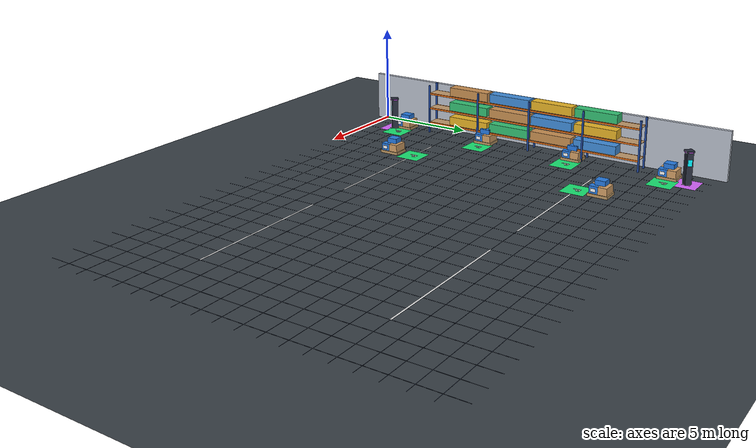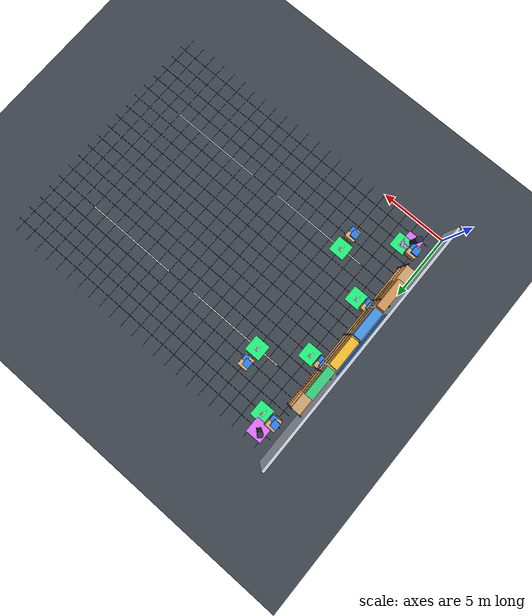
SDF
<sdf version="1.10">
 <world name="warehouse_s4">
  <model name="ground_plane">
   <static>true</static>
   <link name="link">
    <collision name="collision">
     <geometry><plane><normal>0 0 1</normal><size>25 20</size></plane></geometry>
    </collision>
    <visual name="visual">
     <geometry><plane><normal>0 0 1</normal><size>25 20</size></plane></geometry>
     <material>
      <ambient>0.22 0.25 0.28 1</ambient>
      <diffuse>0.22 0.25 0.28 1</diffuse>
      <specular>0.08 0.08 0.08 1</specular>
     </material>
    </visual>
    <pose>12.0 9.5 0 0 0 0</pose>
   </link>
  </model>
  <model name="wall_west">
   <static>true</static>
   <pose>0.1 9.5 1.25 0 0 0</pose>
   <link name="link">
    <collision name="c"><geometry><box><size>0.2 20.0 2.5</size></box></geometry></collision>
    <visual name="v">
     <geometry><box><size>0.2 20.0 2.5</size></box></geometry>
     <material>
      <ambient>0.65 0.68 0.72 1</ambient>
      <diffuse>0.72 0.75 0.80 1</diffuse>
      <specular>0.15 0.15 0.15 1</specular>
     </material>
    </visual>
   </link>
  </model>
  <model name="floor_grid_telemetry">
   <static>true</static>
   <link name="link">
    <visual name="grid_x_1">
     <pose>1.0 9.5 0.001 0 0 0</pose>
     <geometry><box><size>0.02 19.0 0.001</size></box></geometry>
     <material><ambient>0.14 0.18 0.24 1</ambient><diffuse>0.16 0.20 0.28 1</diffuse></material>
    </visual>
    <visual name="grid_x_2">
     <pose>2.0 9.5 0.001 0 0 0</pose>
     <geometry><box><size>0.02 19.0 0.001</size></box></geometry>
     <material><ambient>0.14 0.18 0.24 1</ambient><diffuse>0.16 0.20 0.28 1</diffuse></material>
    </visual>
    <visual name="grid_x_3">
     <pose>3.0 9.5 0.001 0 0 0</pose>
     <geometry><box><size>0.02 19.0 0.001</size></box></geometry>
     <material><ambient>0.14 0.18 0.24 1</ambient><diffuse>0.16 0.20 0.28 1</diffuse></material>
    </visual>
    <visual name="grid_x_4">
     <pose>4.0 9.5 0.001 0 0 0</pose>
     <geometry><box><size>0.02 19.0 0.001</size></box></geometry>
     <material><ambient>0.14 0.18 0.24 1</ambient><diffuse>0.16 0.20 0.28 1</diffuse></material>
    </visual>
    <visual name="grid_x_5">
     <pose>5.0 9.5 0.001 0 0 0</pose>
     <geometry><box><size>0.02 19.0 0.001</size></box></geometry>
     <material><ambient>0.14 0.18 0.24 1</ambient><diffuse>0.16 0.20 0.28 1</diffuse></material>
    </visual>
    <visual name="grid_x_6">
     <pose>6.0 9.5 0.001 0 0 0</pose>
     <geometry><box><size>0.02 19.0 0.001</size></box></geometry>
     <material><ambient>0.14 0.18 0.24 1</ambient><diffuse>0.16 0.20 0.28 1</diffuse></material>
    </visual>
    <visual name="grid_x_7">
     <pose>7.0 9.5 0.001 0 0 0</pose>
     <geometry><box><size>0.02 19.0 0.001</size></box></geometry>
     <material><ambient>0.14 0.18 0.24 1</ambient><diffuse>0.16 0.20 0.28 1</diffuse></material>
    </visual>
    <visual name="grid_x_8">
     <pose>8.0 9.5 0.001 0 0 0</pose>
     <geometry><box><size>0.02 19.0 0.001</size></box></geometry>
     <material><ambient>0.14 0.18 0.24 1</ambient><diffuse>0.16 0.20 0.28 1</diffuse></material>
    </visual>
    <visual name="grid_x_9">
     <pose>9.0 9.5 0.001 0 0 0</pose>
     <geometry><box><size>0.02 19.0 0.001</size></box></geometry>
     <material><ambient>0.14 0.18 0.24 1</ambient><diffuse>0.16 0.20 0.28 1</diffuse></material>
    </visual>
    <visual name="grid_x_10">
     <pose>10.0 9.5 0.001 0 0 0</pose>
     <geometry><box><size>0.02 19.0 0.001</size></box></geometry>
     <material><ambient>0.14 0.18 0.24 1</ambient><diffuse>0.16 0.20 0.28 1</diffuse></material>
    </visual>
    <visual name="grid_x_11">
     <pose>11.0 9.5 0.001 0 0 0</pose>
     <geometry><box><size>0.02 19.0 0.001</size></box></geometry>
     <material><ambient>0.14 0.18 0.24 1</ambient><diffuse>0.16 0.20 0.28 1</diffuse></material>
    </visual>
    <visual name="grid_x_12">
     <pose>12.0 9.5 0.001 0 0 0</pose>
     <geometry><box><size>0.02 19.0 0.001</size></box></geometry>
     <material><ambient>0.14 0.18 0.24 1</ambient><diffuse>0.16 0.20 0.28 1</diffuse></material>
    </visual>
    <visual name="grid_x_13">
     <pose>13.0 9.5 0.001 0 0 0</pose>
     <geometry><box><size>0.02 19.0 0.001</size></box></geometry>
     <material><ambient>0.14 0.18 0.24 1</ambient><diffuse>0.16 0.20 0.28 1</diffuse></material>
    </visual>
    <visual name="grid_x_14">
     <pose>14.0 9.5 0.001 0 0 0</pose>
     <geometry><box><size>0.02 19.0 0.001</size></box></geometry>
     <material><ambient>0.14 0.18 0.24 1</ambient><diffuse>0.16 0.20 0.28 1</diffuse></material>
    </visual>
    <visual name="grid_x_15">
     <pose>15.0 9.5 0.001 0 0 0</pose>
     <geometry><box><size>0.02 19.0 0.001</size></box></geometry>
     <material><ambient>0.14 0.18 0.24 1</ambient><diffuse>0.16 0.20 0.28 1</diffuse></material>
    </visual>
    <visual name="grid_x_16">
     <pose>16.0 9.5 0.001 0 0 0</pose>
     <geometry><box><size>0.02 19.0 0.001</size></box></geometry>
     <material><ambient>0.14 0.18 0.24 1</ambient><diffuse>0.16 0.20 0.28 1</diffuse></material>
    </visual>
    <visual name="grid_x_17">
     <pose>17.0 9.5 0.001 0 0 0</pose>
     <geometry><box><size>0.02 19.0 0.001</size></box></geometry>
     <material><ambient>0.14 0.18 0.24 1</ambient><diffuse>0.16 0.20 0.28 1</diffuse></material>
    </visual>
    <visual name="grid_x_18">
     <pose>18.0 9.5 0.001 0 0 0</pose>
     <geometry><box><size>0.02 19.0 0.001</size></box></geometry>
     <material><ambient>0.14 0.18 0.24 1</ambient><diffuse>0.16 0.20 0.28 1</diffuse></material>
    </visual>
    <visual name="grid_x_19">
     <pose>19.0 9.5 0.001 0 0 0</pose>
     <geometry><box><size>0.02 19.0 0.001</size></box></geometry>
     <material><ambient>0.14 0.18 0.24 1</ambient><diffuse>0.16 0.20 0.28 1</diffuse></material>
    </visual>
    <visual name="grid_x_20">
     <pose>20.0 9.5 0.001 0 0 0</pose>
     <geometry><box><size>0.02 19.0 0.001</size></box></geometry>
     <material><ambient>0.14 0.18 0.24 1</ambient><diffuse>0.16 0.20 0.28 1</diffuse></material>
    </visual>
    <visual name="grid_x_21">
     <pose>21.0 9.5 0.001 0 0 0</pose>
     <geometry><box><size>0.02 19.0 0.001</size></box></geometry>
     <material><ambient>0.14 0.18 0.24 1</ambient><diffuse>0.16 0.20 0.28 1</diffuse></material>
    </visual>
    <visual name="grid_x_22">
     <pose>22.0 9.5 0.001 0 0 0</pose>
     <geometry><box><size>0.02 19.0 0.001</size></box></geometry>
     <material><ambient>0.14 0.18 0.24 1</ambient><diffuse>0.16 0.20 0.28 1</diffuse></material>
    </visual>
    <visual name="grid_x_23">
     <pose>23.0 9.5 0.001 0 0 0</pose>
     <geometry><box><size>0.02 19.0 0.001</size></box></geometry>
     <material><ambient>0.14 0.18 0.24 1</ambient><diffuse>0.16 0.20 0.28 1</diffuse></material>
    </visual>
    <visual name="grid_y_1">
     <pose>12.0 1.0 0.001 0 0 0</pose>
     <geometry><box><size>23.0 0.02 0.001</size></box></geometry>
     <material><ambient>0.14 0.18 0.24 1</ambient><diffuse>0.16 0.20 0.28 1</diffuse></material>
    </visual>
    <visual name="grid_y_2">
     <pose>12.0 2.0 0.001 0 0 0</pose>
     <geometry><box><size>23.0 0.02 0.001</size></box></geometry>
     <material><ambient>0.14 0.18 0.24 1</ambient><diffuse>0.16 0.20 0.28 1</diffuse></material>
    </visual>
    <visual name="grid_y_3">
     <pose>12.0 3.0 0.001 0 0 0</pose>
     <geometry><box><size>23.0 0.02 0.001</size></box></geometry>
     <material><ambient>0.14 0.18 0.24 1</ambient><diffuse>0.16 0.20 0.28 1</diffuse></material>
    </visual>
    <visual name="grid_y_4">
     <pose>12.0 4.0 0.001 0 0 0</pose>
     <geometry><box><size>23.0 0.02 0.001</size></box></geometry>
     <material><ambient>0.14 0.18 0.24 1</ambient><diffuse>0.16 0.20 0.28 1</diffuse></material>
    </visual>
    <visual name="grid_y_5">
     <pose>12.0 5.0 0.001 0 0 0</pose>
     <geometry><box><size>23.0 0.02 0.001</size></box></geometry>
     <material><ambient>0.14 0.18 0.24 1</ambient><diffuse>0.16 0.20 0.28 1</diffuse></material>
    </visual>
    <visual name="grid_y_6">
     <pose>12.0 6.0 0.001 0 0 0</pose>
     <geometry><box><size>23.0 0.02 0.001</size></box></geometry>
     <material><ambient>0.14 0.18 0.24 1</ambient><diffuse>0.16 0.20 0.28 1</diffuse></material>
    </visual>
    <visual name="grid_y_7">
     <pose>12.0 7.0 0.001 0 0 0</pose>
     <geometry><box><size>23.0 0.02 0.001</size></box></geometry>
     <material><ambient>0.14 0.18 0.24 1</ambient><diffuse>0.16 0.20 0.28 1</diffuse></material>
    </visual>
    <visual name="grid_y_8">
     <pose>12.0 8.0 0.001 0 0 0</pose>
     <geometry><box><size>23.0 0.02 0.001</size></box></geometry>
     <material><ambient>0.14 0.18 0.24 1</ambient><diffuse>0.16 0.20 0.28 1</diffuse></material>
    </visual>
    <visual name="grid_y_9">
     <pose>12.0 9.0 0.001 0 0 0</pose>
     <geometry><box><size>23.0 0.02 0.001</size></box></geometry>
     <material><ambient>0.14 0.18 0.24 1</ambient><diffuse>0.16 0.20 0.28 1</diffuse></material>
    </visual>
    <visual name="grid_y_10">
     <pose>12.0 10.0 0.001 0 0 0</pose>
     <geometry><box><size>23.0 0.02 0.001</size></box></geometry>
     <material><ambient>0.14 0.18 0.24 1</ambient><diffuse>0.16 0.20 0.28 1</diffuse></material>
    </visual>
    <visual name="grid_y_11">
     <pose>12.0 11.0 0.001 0 0 0</pose>
     <geometry><box><size>23.0 0.02 0.001</size></box></geometry>
     <material><ambient>0.14 0.18 0.24 1</ambient><diffuse>0.16 0.20 0.28 1</diffuse></material>
    </visual>
    <visual name="grid_y_12">
     <pose>12.0 12.0 0.001 0 0 0</pose>
     <geometry><box><size>23.0 0.02 0.001</size></box></geometry>
     <material><ambient>0.14 0.18 0.24 1</ambient><diffuse>0.16 0.20 0.28 1</diffuse></material>
    </visual>
    <visual name="grid_y_13">
     <pose>12.0 13.0 0.001 0 0 0</pose>
     <geometry><box><size>23.0 0.02 0.001</size></box></geometry>
     <material><ambient>0.14 0.18 0.24 1</ambient><diffuse>0.16 0.20 0.28 1</diffuse></material>
    </visual>
    <visual name="grid_y_14">
     <pose>12.0 14.0 0.001 0 0 0</pose>
     <geometry><box><size>23.0 0.02 0.001</size></box></geometry>
     <material><ambient>0.14 0.18 0.24 1</ambient><diffuse>0.16 0.20 0.28 1</diffuse></material>
    </visual>
    <visual name="grid_y_15">
     <pose>12.0 15.0 0.001 0 0 0</pose>
     <geometry><box><size>23.0 0.02 0.001</size></box></geometry>
     <material><ambient>0.14 0.18 0.24 1</ambient><diffuse>0.16 0.20 0.28 1</diffuse></material>
    </visual>
    <visual name="grid_y_16">
     <pose>12.0 16.0 0.001 0 0 0</pose>
     <geometry><box><size>23.0 0.02 0.001</size></box></geometry>
     <material><ambient>0.14 0.18 0.24 1</ambient><diffuse>0.16 0.20 0.28 1</diffuse></material>
    </visual>
    <visual name="grid_y_17">
     <pose>12.0 17.0 0.001 0 0 0</pose>
     <geometry><box><size>23.0 0.02 0.001</size></box></geometry>
     <material><ambient>0.14 0.18 0.24 1</ambient><diffuse>0.16 0.20 0.28 1</diffuse></material>
    </visual>
    <visual name="grid_y_18">
     <pose>12.0 18.0 0.001 0 0 0</pose>
     <geometry><box><size>23.0 0.02 0.001</size></box></geometry>
     <material><ambient>0.14 0.18 0.24 1</ambient><diffuse>0.16 0.20 0.28 1</diffuse></material>
    </visual>
   </link>
  </model>
  <model name="transit_lanes">
   <static>true</static>
   <link name="link">
    <visual name="lane_north_west">
     <pose>7.0 14.0 0.002 0 0 0</pose>
     <geometry><box><size>7.5 0.08 0.002</size></box></geometry>
     <material><ambient>0.8 0.8 0.8 1</ambient><diffuse>0.9 0.9 0.9 1</diffuse></material>
    </visual>
    <visual name="lane_north_east">
     <pose>16.5 14.0 0.002 0 0 0</pose>
     <geometry><box><size>7.0 0.08 0.002</size></box></geometry>
     <material><ambient>0.8 0.8 0.8 1</ambient><diffuse>0.9 0.9 0.9 1</diffuse></material>
    </visual>
    <visual name="lane_south_west">
     <pose>7.0 5.0 0.002 0 0 0</pose>
     <geometry><box><size>7.5 0.08 0.002</size></box></geometry>
     <material><ambient>0.8 0.8 0.8 1</ambient><diffuse>0.9 0.9 0.9 1</diffuse></material>
    </visual>
    <visual name="lane_south_east">
     <pose>16.5 5.0 0.002 0 0 0</pose>
     <geometry><box><size>7.0 0.08 0.002</size></box></geometry>
     <material><ambient>0.8 0.8 0.8 1</ambient><diffuse>0.9 0.9 0.9 1</diffuse></material>
    </visual>
   </link>
  </model>
  <model name="pad_pickup_1">
   <static>true</static>
   <pose>2.000 17.000 0.003 0 0 0</pose>
   <link name="link">
    <visual name="pad_surface">
     <geometry><box><size>1.10 1.10 0.004</size></box></geometry>
     <material>
      <ambient>0.05 0.50 0.28 1</ambient>
      <diffuse>0.08 0.72 0.35 1</diffuse>
      <specular>0.4 0.4 0.4 1</specular>
     </material>
    </visual>
    <visual name="pad_border">
     <pose>0 0 0.002 0 0 0</pose>
     <geometry><box><size>1.20 1.20 0.002</size></box></geometry>
     <material><ambient>0.10 0.85 0.40 1</ambient><diffuse>0.10 0.90 0.45 1</diffuse></material>
    </visual>
    <visual name="stencil_p_vert">
     <pose>-0.10 0 0.005 0 0 0</pose>
     <geometry><box><size>0.07 0.42 0.003</size></box></geometry>
     <material><ambient>1 1 1 1</ambient><diffuse>1 1 1 1</diffuse><specular>0.5 0.5 0.5 1</specular></material>
    </visual>
    <visual name="stencil_p_top">
     <pose>0.01 0.16 0.005 0 0 0</pose>
     <geometry><box><size>0.16 0.07 0.003</size></box></geometry>
     <material><ambient>1 1 1 1</ambient><diffuse>1 1 1 1</diffuse><specular>0.5 0.5 0.5 1</specular></material>
    </visual>
    <visual name="stencil_p_mid">
     <pose>0.01 0.02 0.005 0 0 0</pose>
     <geometry><box><size>0.16 0.07 0.003</size></box></geometry>
     <material><ambient>1 1 1 1</ambient><diffuse>1 1 1 1</diffuse><specular>0.5 0.5 0.5 1</specular></material>
    </visual>
    <visual name="stencil_p_right">
     <pose>0.09 0.09 0.005 0 0 0</pose>
     <geometry><box><size>0.07 0.18 0.003</size></box></geometry>
     <material><ambient>1 1 1 1</ambient><diffuse>1 1 1 1</diffuse><specular>0.5 0.5 0.5 1</specular></material>
    </visual>
   </link>
  </model>
  <model name="cargo_pickup_1">
   <static>true</static>
   <pose>1.100 17.000 0.0 0 0 0.0000</pose>
   <link name="link">
    <visual name="pallet_base">
     <pose>0 0 0.07 0 0 0</pose>
     <geometry><box><size>0.80 1.00 0.14</size></box></geometry>
     <material><ambient>0.58 0.46 0.30 1</ambient><diffuse>0.72 0.58 0.38 1</diffuse></material>
    </visual>
    <visual name="box_ll">
     <pose>-0.18 -0.22 0.32 0 0 0</pose>
     <geometry><box><size>0.36 0.44 0.36</size></box></geometry>
     <material><ambient>0.72 0.52 0.32 1</ambient><diffuse>0.82 0.62 0.40 1</diffuse></material>
    </visual>
    <visual name="box_lr">
     <pose>0.18 -0.22 0.32 0 0 0</pose>
     <geometry><box><size>0.36 0.44 0.36</size></box></geometry>
     <material>
      <ambient>0.12 0.38 0.72 1</ambient>
      <diffuse>0.15 0.48 0.88 1</diffuse>
      <specular>0.3 0.3 0.3 1</specular>
     </material>
    </visual>
    <visual name="box_top">
     <pose>0 0.22 0.32 0 0 0</pose>
     <geometry><box><size>0.74 0.44 0.36</size></box></geometry>
     <material><ambient>0.72 0.52 0.32 1</ambient><diffuse>0.82 0.62 0.40 1</diffuse></material>
    </visual>
    <visual name="box_upper">
     <pose>-0.10 0.0 0.62 0 0 0</pose>
     <geometry><box><size>0.48 0.52 0.24</size></box></geometry>
     <material>
      <ambient>0.12 0.38 0.72 1</ambient>
      <diffuse>0.15 0.48 0.88 1</diffuse>
      <specular>0.3 0.3 0.3 1</specular>
     </material>
    </visual>
    <visual name="placard">
     <pose>0.402 -0.22 0.32 0 0 0</pose>
     <geometry><box><size>0.005 0.24 0.16</size></box></geometry>
     <material><ambient>0.95 0.95 0.95 1</ambient><diffuse>0.98 0.98 0.98 1</diffuse></material>
    </visual>
   </link>
  </model>
  <model name="pad_pickup_2">
   <static>true</static>
   <pose>2.000 12.000 0.003 0 0 0</pose>
   <link name="link">
    <visual name="pad_surface">
     <geometry><box><size>1.10 1.10 0.004</size></box></geometry>
     <material>
      <ambient>0.05 0.50 0.28 1</ambient>
      <diffuse>0.08 0.72 0.35 1</diffuse>
      <specular>0.4 0.4 0.4 1</specular>
     </material>
    </visual>
    <visual name="pad_border">
     <pose>0 0 0.002 0 0 0</pose>
     <geometry><box><size>1.20 1.20 0.002</size></box></geometry>
     <material><ambient>0.10 0.85 0.40 1</ambient><diffuse>0.10 0.90 0.45 1</diffuse></material>
    </visual>
    <visual name="stencil_p_vert">
     <pose>-0.10 0 0.005 0 0 0</pose>
     <geometry><box><size>0.07 0.42 0.003</size></box></geometry>
     <material><ambient>1 1 1 1</ambient><diffuse>1 1 1 1</diffuse><specular>0.5 0.5 0.5 1</specular></material>
    </visual>
    <visual name="stencil_p_top">
     <pose>0.01 0.16 0.005 0 0 0</pose>
     <geometry><box><size>0.16 0.07 0.003</size></box></geometry>
     <material><ambient>1 1 1 1</ambient><diffuse>1 1 1 1</diffuse><specular>0.5 0.5 0.5 1</specular></material>
    </visual>
    <visual name="stencil_p_mid">
     <pose>0.01 0.02 0.005 0 0 0</pose>
     <geometry><box><size>0.16 0.07 0.003</size></box></geometry>
     <material><ambient>1 1 1 1</ambient><diffuse>1 1 1 1</diffuse><specular>0.5 0.5 0.5 1</specular></material>
    </visual>
    <visual name="stencil_p_right">
     <pose>0.09 0.09 0.005 0 0 0</pose>
     <geometry><box><size>0.07 0.18 0.003</size></box></geometry>
     <material><ambient>1 1 1 1</ambient><diffuse>1 1 1 1</diffuse><specular>0.5 0.5 0.5 1</specular></material>
    </visual>
   </link>
  </model>
  <model name="cargo_pickup_2">
   <static>true</static>
   <pose>1.100 12.000 0.0 0 0 0.0000</pose>
   <link name="link">
    <visual name="pallet_base">
     <pose>0 0 0.07 0 0 0</pose>
     <geometry><box><size>0.80 1.00 0.14</size></box></geometry>
     <material><ambient>0.58 0.46 0.30 1</ambient><diffuse>0.72 0.58 0.38 1</diffuse></material>
    </visual>
    <visual name="box_ll">
     <pose>-0.18 -0.22 0.32 0 0 0</pose>
     <geometry><box><size>0.36 0.44 0.36</size></box></geometry>
     <material><ambient>0.72 0.52 0.32 1</ambient><diffuse>0.82 0.62 0.40 1</diffuse></material>
    </visual>
    <visual name="box_lr">
     <pose>0.18 -0.22 0.32 0 0 0</pose>
     <geometry><box><size>0.36 0.44 0.36</size></box></geometry>
     <material>
      <ambient>0.12 0.38 0.72 1</ambient>
      <diffuse>0.15 0.48 0.88 1</diffuse>
      <specular>0.3 0.3 0.3 1</specular>
     </material>
    </visual>
    <visual name="box_top">
     <pose>0 0.22 0.32 0 0 0</pose>
     <geometry><box><size>0.74 0.44 0.36</size></box></geometry>
     <material><ambient>0.72 0.52 0.32 1</ambient><diffuse>0.82 0.62 0.40 1</diffuse></material>
    </visual>
    <visual name="box_upper">
     <pose>-0.10 0.0 0.62 0 0 0</pose>
     <geometry><box><size>0.48 0.52 0.24</size></box></geometry>
     <material>
      <ambient>0.12 0.38 0.72 1</ambient>
      <diffuse>0.15 0.48 0.88 1</diffuse>
      <specular>0.3 0.3 0.3 1</specular>
     </material>
    </visual>
    <visual name="placard">
     <pose>0.402 -0.22 0.32 0 0 0</pose>
     <geometry><box><size>0.005 0.24 0.16</size></box></geometry>
     <material><ambient>0.95 0.95 0.95 1</ambient><diffuse>0.98 0.98 0.98 1</diffuse></material>
    </visual>
   </link>
  </model>
  <model name="pad_pickup_3">
   <static>true</static>
   <pose>2.000 7.000 0.003 0 0 0</pose>
   <link name="link">
    <visual name="pad_surface">
     <geometry><box><size>1.10 1.10 0.004</size></box></geometry>
     <material>
      <ambient>0.05 0.50 0.28 1</ambient>
      <diffuse>0.08 0.72 0.35 1</diffuse>
      <specular>0.4 0.4 0.4 1</specular>
     </material>
    </visual>
    <visual name="pad_border">
     <pose>0 0 0.002 0 0 0</pose>
     <geometry><box><size>1.20 1.20 0.002</size></box></geometry>
     <material><ambient>0.10 0.85 0.40 1</ambient><diffuse>0.10 0.90 0.45 1</diffuse></material>
    </visual>
    <visual name="stencil_p_vert">
     <pose>-0.10 0 0.005 0 0 0</pose>
     <geometry><box><size>0.07 0.42 0.003</size></box></geometry>
     <material><ambient>1 1 1 1</ambient><diffuse>1 1 1 1</diffuse><specular>0.5 0.5 0.5 1</specular></material>
    </visual>
    <visual name="stencil_p_top">
     <pose>0.01 0.16 0.005 0 0 0</pose>
     <geometry><box><size>0.16 0.07 0.003</size></box></geometry>
     <material><ambient>1 1 1 1</ambient><diffuse>1 1 1 1</diffuse><specular>0.5 0.5 0.5 1</specular></material>
    </visual>
    <visual name="stencil_p_mid">
     <pose>0.01 0.02 0.005 0 0 0</pose>
     <geometry><box><size>0.16 0.07 0.003</size></box></geometry>
     <material><ambient>1 1 1 1</ambient><diffuse>1 1 1 1</diffuse><specular>0.5 0.5 0.5 1</specular></material>
    </visual>
    <visual name="stencil_p_right">
     <pose>0.09 0.09 0.005 0 0 0</pose>
     <geometry><box><size>0.07 0.18 0.003</size></box></geometry>
     <material><ambient>1 1 1 1</ambient><diffuse>1 1 1 1</diffuse><specular>0.5 0.5 0.5 1</specular></material>
    </visual>
   </link>
  </model>
  <model name="cargo_pickup_3">
   <static>true</static>
   <pose>1.100 7.000 0.0 0 0 0.0000</pose>
   <link name="link">
    <visual name="pallet_base">
     <pose>0 0 0.07 0 0 0</pose>
     <geometry><box><size>0.80 1.00 0.14</size></box></geometry>
     <material><ambient>0.58 0.46 0.30 1</ambient><diffuse>0.72 0.58 0.38 1</diffuse></material>
    </visual>
    <visual name="box_ll">
     <pose>-0.18 -0.22 0.32 0 0 0</pose>
     <geometry><box><size>0.36 0.44 0.36</size></box></geometry>
     <material><ambient>0.72 0.52 0.32 1</ambient><diffuse>0.82 0.62 0.40 1</diffuse></material>
    </visual>
    <visual name="box_lr">
     <pose>0.18 -0.22 0.32 0 0 0</pose>
     <geometry><box><size>0.36 0.44 0.36</size></box></geometry>
     <material>
      <ambient>0.12 0.38 0.72 1</ambient>
      <diffuse>0.15 0.48 0.88 1</diffuse>
      <specular>0.3 0.3 0.3 1</specular>
     </material>
    </visual>
    <visual name="box_top">
     <pose>0 0.22 0.32 0 0 0</pose>
     <geometry><box><size>0.74 0.44 0.36</size></box></geometry>
     <material><ambient>0.72 0.52 0.32 1</ambient><diffuse>0.82 0.62 0.40 1</diffuse></material>
    </visual>
    <visual name="box_upper">
     <pose>-0.10 0.0 0.62 0 0 0</pose>
     <geometry><box><size>0.48 0.52 0.24</size></box></geometry>
     <material>
      <ambient>0.12 0.38 0.72 1</ambient>
      <diffuse>0.15 0.48 0.88 1</diffuse>
      <specular>0.3 0.3 0.3 1</specular>
     </material>
    </visual>
    <visual name="placard">
     <pose>0.402 -0.22 0.32 0 0 0</pose>
     <geometry><box><size>0.005 0.24 0.16</size></box></geometry>
     <material><ambient>0.95 0.95 0.95 1</ambient><diffuse>0.98 0.98 0.98 1</diffuse></material>
    </visual>
   </link>
  </model>
  <model name="pad_pickup_4">
   <static>true</static>
   <pose>2.000 2.000 0.003 0 0 0</pose>
   <link name="link">
    <visual name="pad_surface">
     <geometry><box><size>1.10 1.10 0.004</size></box></geometry>
     <material>
      <ambient>0.05 0.50 0.28 1</ambient>
      <diffuse>0.08 0.72 0.35 1</diffuse>
      <specular>0.4 0.4 0.4 1</specular>
     </material>
    </visual>
    <visual name="pad_border">
     <pose>0 0 0.002 0 0 0</pose>
     <geometry><box><size>1.20 1.20 0.002</size></box></geometry>
     <material><ambient>0.10 0.85 0.40 1</ambient><diffuse>0.10 0.90 0.45 1</diffuse></material>
    </visual>
    <visual name="stencil_p_vert">
     <pose>-0.10 0 0.005 0 0 0</pose>
     <geometry><box><size>0.07 0.42 0.003</size></box></geometry>
     <material><ambient>1 1 1 1</ambient><diffuse>1 1 1 1</diffuse><specular>0.5 0.5 0.5 1</specular></material>
    </visual>
    <visual name="stencil_p_top">
     <pose>0.01 0.16 0.005 0 0 0</pose>
     <geometry><box><size>0.16 0.07 0.003</size></box></geometry>
     <material><ambient>1 1 1 1</ambient><diffuse>1 1 1 1</diffuse><specular>0.5 0.5 0.5 1</specular></material>
    </visual>
    <visual name="stencil_p_mid">
     <pose>0.01 0.02 0.005 0 0 0</pose>
     <geometry><box><size>0.16 0.07 0.003</size></box></geometry>
     <material><ambient>1 1 1 1</ambient><diffuse>1 1 1 1</diffuse><specular>0.5 0.5 0.5 1</specular></material>
    </visual>
    <visual name="stencil_p_right">
     <pose>0.09 0.09 0.005 0 0 0</pose>
     <geometry><box><size>0.07 0.18 0.003</size></box></geometry>
     <material><ambient>1 1 1 1</ambient><diffuse>1 1 1 1</diffuse><specular>0.5 0.5 0.5 1</specular></material>
    </visual>
   </link>
  </model>
  <model name="cargo_pickup_4">
   <static>true</static>
   <pose>1.100 2.000 0.0 0 0 0.0000</pose>
   <link name="link">
    <visual name="pallet_base">
     <pose>0 0 0.07 0 0 0</pose>
     <geometry><box><size>0.80 1.00 0.14</size></box></geometry>
     <material><ambient>0.58 0.46 0.30 1</ambient><diffuse>0.72 0.58 0.38 1</diffuse></material>
    </visual>
    <visual name="box_ll">
     <pose>-0.18 -0.22 0.32 0 0 0</pose>
     <geometry><box><size>0.36 0.44 0.36</size></box></geometry>
     <material><ambient>0.72 0.52 0.32 1</ambient><diffuse>0.82 0.62 0.40 1</diffuse></material>
    </visual>
    <visual name="box_lr">
     <pose>0.18 -0.22 0.32 0 0 0</pose>
     <geometry><box><size>0.36 0.44 0.36</size></box></geometry>
     <material>
      <ambient>0.12 0.38 0.72 1</ambient>
      <diffuse>0.15 0.48 0.88 1</diffuse>
      <specular>0.3 0.3 0.3 1</specular>
     </material>
    </visual>
    <visual name="box_top">
     <pose>0 0.22 0.32 0 0 0</pose>
     <geometry><box><size>0.74 0.44 0.36</size></box></geometry>
     <material><ambient>0.72 0.52 0.32 1</ambient><diffuse>0.82 0.62 0.40 1</diffuse></material>
    </visual>
    <visual name="box_upper">
     <pose>-0.10 0.0 0.62 0 0 0</pose>
     <geometry><box><size>0.48 0.52 0.24</size></box></geometry>
     <material>
      <ambient>0.12 0.38 0.72 1</ambient>
      <diffuse>0.15 0.48 0.88 1</diffuse>
      <specular>0.3 0.3 0.3 1</specular>
     </material>
    </visual>
    <visual name="placard">
     <pose>0.402 -0.22 0.32 0 0 0</pose>
     <geometry><box><size>0.005 0.24 0.16</size></box></geometry>
     <material><ambient>0.95 0.95 0.95 1</ambient><diffuse>0.98 0.98 0.98 1</diffuse></material>
    </visual>
   </link>
  </model>
  <model name="pad_staging_n">
   <static>true</static>
   <pose>5.000 14.000 0.003 0 0 0</pose>
   <link name="link">
    <visual name="pad_surface">
     <geometry><box><size>1.10 1.10 0.004</size></box></geometry>
     <material>
      <ambient>0.05 0.50 0.28 1</ambient>
      <diffuse>0.08 0.72 0.35 1</diffuse>
      <specular>0.4 0.4 0.4 1</specular>
     </material>
    </visual>
    <visual name="pad_border">
     <pose>0 0 0.002 0 0 0</pose>
     <geometry><box><size>1.20 1.20 0.002</size></box></geometry>
     <material><ambient>0.10 0.85 0.40 1</ambient><diffuse>0.10 0.90 0.45 1</diffuse></material>
    </visual>
    <visual name="stencil_p_vert">
     <pose>-0.10 0 0.005 0 0 0</pose>
     <geometry><box><size>0.07 0.42 0.003</size></box></geometry>
     <material><ambient>1 1 1 1</ambient><diffuse>1 1 1 1</diffuse><specular>0.5 0.5 0.5 1</specular></material>
    </visual>
    <visual name="stencil_p_top">
     <pose>0.01 0.16 0.005 0 0 0</pose>
     <geometry><box><size>0.16 0.07 0.003</size></box></geometry>
     <material><ambient>1 1 1 1</ambient><diffuse>1 1 1 1</diffuse><specular>0.5 0.5 0.5 1</specular></material>
    </visual>
    <visual name="stencil_p_mid">
     <pose>0.01 0.02 0.005 0 0 0</pose>
     <geometry><box><size>0.16 0.07 0.003</size></box></geometry>
     <material><ambient>1 1 1 1</ambient><diffuse>1 1 1 1</diffuse><specular>0.5 0.5 0.5 1</specular></material>
    </visual>
    <visual name="stencil_p_right">
     <pose>0.09 0.09 0.005 0 0 0</pose>
     <geometry><box><size>0.07 0.18 0.003</size></box></geometry>
     <material><ambient>1 1 1 1</ambient><diffuse>1 1 1 1</diffuse><specular>0.5 0.5 0.5 1</specular></material>
    </visual>
   </link>
  </model>
  <model name="cargo_staging_n">
   <static>true</static>
   <pose>5.000 15.200 0.0 0 0 0.0000</pose>
   <link name="link">
    <visual name="pallet_base">
     <pose>0 0 0.07 0 0 0</pose>
     <geometry><box><size>0.80 1.00 0.14</size></box></geometry>
     <material><ambient>0.58 0.46 0.30 1</ambient><diffuse>0.72 0.58 0.38 1</diffuse></material>
    </visual>
    <visual name="box_ll">
     <pose>-0.18 -0.22 0.32 0 0 0</pose>
     <geometry><box><size>0.36 0.44 0.36</size></box></geometry>
     <material><ambient>0.72 0.52 0.32 1</ambient><diffuse>0.82 0.62 0.40 1</diffuse></material>
    </visual>
    <visual name="box_lr">
     <pose>0.18 -0.22 0.32 0 0 0</pose>
     <geometry><box><size>0.36 0.44 0.36</size></box></geometry>
     <material>
      <ambient>0.12 0.38 0.72 1</ambient>
      <diffuse>0.15 0.48 0.88 1</diffuse>
      <specular>0.3 0.3 0.3 1</specular>
     </material>
    </visual>
    <visual name="box_top">
     <pose>0 0.22 0.32 0 0 0</pose>
     <geometry><box><size>0.74 0.44 0.36</size></box></geometry>
     <material><ambient>0.72 0.52 0.32 1</ambient><diffuse>0.82 0.62 0.40 1</diffuse></material>
    </visual>
    <visual name="box_upper">
     <pose>-0.10 0.0 0.62 0 0 0</pose>
     <geometry><box><size>0.48 0.52 0.24</size></box></geometry>
     <material>
      <ambient>0.12 0.38 0.72 1</ambient>
      <diffuse>0.15 0.48 0.88 1</diffuse>
      <specular>0.3 0.3 0.3 1</specular>
     </material>
    </visual>
    <visual name="placard">
     <pose>0.402 -0.22 0.32 0 0 0</pose>
     <geometry><box><size>0.005 0.24 0.16</size></box></geometry>
     <material><ambient>0.95 0.95 0.95 1</ambient><diffuse>0.98 0.98 0.98 1</diffuse></material>
    </visual>
   </link>
  </model>
  <model name="pad_staging_s">
   <static>true</static>
   <pose>5.000 5.000 0.003 0 0 0</pose>
   <link name="link">
    <visual name="pad_surface">
     <geometry><box><size>1.10 1.10 0.004</size></box></geometry>
     <material>
      <ambient>0.05 0.50 0.28 1</ambient>
      <diffuse>0.08 0.72 0.35 1</diffuse>
      <specular>0.4 0.4 0.4 1</specular>
     </material>
    </visual>
    <visual name="pad_border">
     <pose>0 0 0.002 0 0 0</pose>
     <geometry><box><size>1.20 1.20 0.002</size></box></geometry>
     <material><ambient>0.10 0.85 0.40 1</ambient><diffuse>0.10 0.90 0.45 1</diffuse></material>
    </visual>
    <visual name="stencil_p_vert">
     <pose>-0.10 0 0.005 0 0 0</pose>
     <geometry><box><size>0.07 0.42 0.003</size></box></geometry>
     <material><ambient>1 1 1 1</ambient><diffuse>1 1 1 1</diffuse><specular>0.5 0.5 0.5 1</specular></material>
    </visual>
    <visual name="stencil_p_top">
     <pose>0.01 0.16 0.005 0 0 0</pose>
     <geometry><box><size>0.16 0.07 0.003</size></box></geometry>
     <material><ambient>1 1 1 1</ambient><diffuse>1 1 1 1</diffuse><specular>0.5 0.5 0.5 1</specular></material>
    </visual>
    <visual name="stencil_p_mid">
     <pose>0.01 0.02 0.005 0 0 0</pose>
     <geometry><box><size>0.16 0.07 0.003</size></box></geometry>
     <material><ambient>1 1 1 1</ambient><diffuse>1 1 1 1</diffuse><specular>0.5 0.5 0.5 1</specular></material>
    </visual>
    <visual name="stencil_p_right">
     <pose>0.09 0.09 0.005 0 0 0</pose>
     <geometry><box><size>0.07 0.18 0.003</size></box></geometry>
     <material><ambient>1 1 1 1</ambient><diffuse>1 1 1 1</diffuse><specular>0.5 0.5 0.5 1</specular></material>
    </visual>
   </link>
  </model>
  <model name="cargo_staging_s">
   <static>true</static>
   <pose>5.000 3.800 0.0 0 0 0.0000</pose>
   <link name="link">
    <visual name="pallet_base">
     <pose>0 0 0.07 0 0 0</pose>
     <geometry><box><size>0.80 1.00 0.14</size></box></geometry>
     <material><ambient>0.58 0.46 0.30 1</ambient><diffuse>0.72 0.58 0.38 1</diffuse></material>
    </visual>
    <visual name="box_ll">
     <pose>-0.18 -0.22 0.32 0 0 0</pose>
     <geometry><box><size>0.36 0.44 0.36</size></box></geometry>
     <material><ambient>0.72 0.52 0.32 1</ambient><diffuse>0.82 0.62 0.40 1</diffuse></material>
    </visual>
    <visual name="box_lr">
     <pose>0.18 -0.22 0.32 0 0 0</pose>
     <geometry><box><size>0.36 0.44 0.36</size></box></geometry>
     <material>
      <ambient>0.12 0.38 0.72 1</ambient>
      <diffuse>0.15 0.48 0.88 1</diffuse>
      <specular>0.3 0.3 0.3 1</specular>
     </material>
    </visual>
    <visual name="box_top">
     <pose>0 0.22 0.32 0 0 0</pose>
     <geometry><box><size>0.74 0.44 0.36</size></box></geometry>
     <material><ambient>0.72 0.52 0.32 1</ambient><diffuse>0.82 0.62 0.40 1</diffuse></material>
    </visual>
    <visual name="box_upper">
     <pose>-0.10 0.0 0.62 0 0 0</pose>
     <geometry><box><size>0.48 0.52 0.24</size></box></geometry>
     <material>
      <ambient>0.12 0.38 0.72 1</ambient>
      <diffuse>0.15 0.48 0.88 1</diffuse>
      <specular>0.3 0.3 0.3 1</specular>
     </material>
    </visual>
    <visual name="placard">
     <pose>0.402 -0.22 0.32 0 0 0</pose>
     <geometry><box><size>0.005 0.24 0.16</size></box></geometry>
     <material><ambient>0.95 0.95 0.95 1</ambient><diffuse>0.98 0.98 0.98 1</diffuse></material>
    </visual>
   </link>
  </model>
  <model name="pad_charge_nw">
   <static>true</static>
   <pose>1.500 18.000 0.003 0 0 0</pose>
   <link name="link">
    <visual name="pad_surface">
     <geometry><box><size>1.10 1.10 0.004</size></box></geometry>
     <material>
      <ambient>0.40 0.15 0.65 1</ambient>
      <diffuse>0.65 0.25 0.95 1</diffuse>
      <specular>0.5 0.5 0.5 1</specular>
     </material>
    </visual>
    <visual name="pad_border">
     <pose>0 0 0.002 0 0 0</pose>
     <geometry><box><size>1.20 1.20 0.002</size></box></geometry>
     <material><ambient>0.80 0.35 1.0 1</ambient><diffuse>0.85 0.40 1.0 1</diffuse></material>
    </visual>
    <visual name="stencil_h_left">
     <pose>-0.12 0 0.005 0 0 0</pose>
     <geometry><box><size>0.07 0.42 0.003</size></box></geometry>
     <material><ambient>1 1 1 1</ambient><diffuse>1 1 1 1</diffuse><specular>0.5 0.5 0.5 1</specular></material>
    </visual>
    <visual name="stencil_h_right">
     <pose>0.12 0 0.005 0 0 0</pose>
     <geometry><box><size>0.07 0.42 0.003</size></box></geometry>
     <material><ambient>1 1 1 1</ambient><diffuse>1 1 1 1</diffuse><specular>0.5 0.5 0.5 1</specular></material>
    </visual>
    <visual name="stencil_h_mid">
     <pose>0 0 0.005 0 0 0</pose>
     <geometry><box><size>0.22 0.07 0.003</size></box></geometry>
     <material><ambient>1 1 1 1</ambient><diffuse>1 1 1 1</diffuse><specular>0.5 0.5 0.5 1</specular></material>
    </visual>
   </link>
  </model>
  <model name="kiosk_charge_nw">
   <static>true</static>
   <pose>1.500 18.000 0.0 0 0 0.7850</pose>
   <link name="link">
    <visual name="pillar">
     <pose>0 0 0.80 0 0 0</pose>
     <geometry><box><size>0.32 0.32 1.60</size></box></geometry>
     <material>
      <ambient>0.12 0.14 0.18 1</ambient>
      <diffuse>0.16 0.18 0.24 1</diffuse>
      <specular>0.4 0.4 0.4 1</specular>
     </material>
    </visual>
    <visual name="cap">
     <pose>0 0 1.64 0 0 0</pose>
     <geometry><box><size>0.38 0.38 0.08</size></box></geometry>
     <material>
      <ambient>0.12 0.14 0.18 1</ambient>
      <diffuse>0.16 0.18 0.24 1</diffuse>
      <specular>0.4 0.4 0.4 1</specular>
     </material>
    </visual>
    <visual name="halo_ring">
     <pose>0 0 1.61 0 0 0</pose>
     <geometry><cylinder><radius>0.22</radius><length>0.05</length></cylinder></geometry>
     <material>
      <ambient>0.75 0.25 0.95 1</ambient>
      <diffuse>0.85 0.35 1.0 1</diffuse>
      <specular>1 1 1 1</specular>
     </material>
    </visual>
    <visual name="screen">
     <pose>0.162 0 1.10 0 0 0</pose>
     <geometry><box><size>0.008 0.22 0.32</size></box></geometry>
     <material>
      <ambient>0.0 0.85 1.0 1</ambient>
      <diffuse>0.0 0.95 1.0 1</diffuse>
      <specular>0.8 0.8 0.8 1</specular>
     </material>
    </visual>
   </link>
  </model>
  <model name="pad_charge_sw">
   <static>true</static>
   <pose>1.500 1.500 0.003 0 0 0</pose>
   <link name="link">
    <visual name="pad_surface">
     <geometry><box><size>1.10 1.10 0.004</size></box></geometry>
     <material>
      <ambient>0.40 0.15 0.65 1</ambient>
      <diffuse>0.65 0.25 0.95 1</diffuse>
      <specular>0.5 0.5 0.5 1</specular>
     </material>
    </visual>
    <visual name="pad_border">
     <pose>0 0 0.002 0 0 0</pose>
     <geometry><box><size>1.20 1.20 0.002</size></box></geometry>
     <material><ambient>0.80 0.35 1.0 1</ambient><diffuse>0.85 0.40 1.0 1</diffuse></material>
    </visual>
    <visual name="stencil_h_left">
     <pose>-0.12 0 0.005 0 0 0</pose>
     <geometry><box><size>0.07 0.42 0.003</size></box></geometry>
     <material><ambient>1 1 1 1</ambient><diffuse>1 1 1 1</diffuse><specular>0.5 0.5 0.5 1</specular></material>
    </visual>
    <visual name="stencil_h_right">
     <pose>0.12 0 0.005 0 0 0</pose>
     <geometry><box><size>0.07 0.42 0.003</size></box></geometry>
     <material><ambient>1 1 1 1</ambient><diffuse>1 1 1 1</diffuse><specular>0.5 0.5 0.5 1</specular></material>
    </visual>
    <visual name="stencil_h_mid">
     <pose>0 0 0.005 0 0 0</pose>
     <geometry><box><size>0.22 0.07 0.003</size></box></geometry>
     <material><ambient>1 1 1 1</ambient><diffuse>1 1 1 1</diffuse><specular>0.5 0.5 0.5 1</specular></material>
    </visual>
   </link>
  </model>
  <model name="kiosk_charge_sw">
   <static>true</static>
   <pose>1.500 1.500 0.0 0 0 -0.7850</pose>
   <link name="link">
    <visual name="pillar">
     <pose>0 0 0.80 0 0 0</pose>
     <geometry><box><size>0.32 0.32 1.60</size></box></geometry>
     <material>
      <ambient>0.12 0.14 0.18 1</ambient>
      <diffuse>0.16 0.18 0.24 1</diffuse>
      <specular>0.4 0.4 0.4 1</specular>
     </material>
    </visual>
    <visual name="cap">
     <pose>0 0 1.64 0 0 0</pose>
     <geometry><box><size>0.38 0.38 0.08</size></box></geometry>
     <material>
      <ambient>0.12 0.14 0.18 1</ambient>
      <diffuse>0.16 0.18 0.24 1</diffuse>
      <specular>0.4 0.4 0.4 1</specular>
     </material>
    </visual>
    <visual name="halo_ring">
     <pose>0 0 1.61 0 0 0</pose>
     <geometry><cylinder><radius>0.22</radius><length>0.05</length></cylinder></geometry>
     <material>
      <ambient>0.75 0.25 0.95 1</ambient>
      <diffuse>0.85 0.35 1.0 1</diffuse>
      <specular>1 1 1 1</specular>
     </material>
    </visual>
    <visual name="screen">
     <pose>0.162 0 1.10 0 0 0</pose>
     <geometry><box><size>0.008 0.22 0.32</size></box></geometry>
     <material>
      <ambient>0.0 0.85 1.0 1</ambient>
      <diffuse>0.0 0.95 1.0 1</diffuse>
      <specular>0.8 0.8 0.8 1</specular>
     </material>
    </visual>
   </link>
  </model>
  <model name="rack_left_west_hi">
   <static>true</static>
   <pose>0.800 9.500 0.000 0 0 1.5708</pose>
   <link name="link">
    <visual name="post_1">
     <pose>-5.960 -0.360 1.300 0 0 0</pose>
     <geometry><box><size>0.08 0.08 2.600</size></box></geometry>
     <material>
      <ambient>0.10 0.20 0.45 1</ambient>
      <diffuse>0.15 0.32 0.68 1</diffuse>
      <specular>0.3 0.3 0.3 1</specular>
     </material>
    </visual>
    <visual name="post_2">
     <pose>-5.960 0.360 1.300 0 0 0</pose>
     <geometry><box><size>0.08 0.08 2.600</size></box></geometry>
     <material>
      <ambient>0.10 0.20 0.45 1</ambient>
      <diffuse>0.15 0.32 0.68 1</diffuse>
      <specular>0.3 0.3 0.3 1</specular>
     </material>
    </visual>
    <visual name="post_3">
     <pose>5.960 -0.360 1.300 0 0 0</pose>
     <geometry><box><size>0.08 0.08 2.600</size></box></geometry>
     <material>
      <ambient>0.10 0.20 0.45 1</ambient>
      <diffuse>0.15 0.32 0.68 1</diffuse>
      <specular>0.3 0.3 0.3 1</specular>
     </material>
    </visual>
    <visual name="post_4">
     <pose>5.960 0.360 1.300 0 0 0</pose>
     <geometry><box><size>0.08 0.08 2.600</size></box></geometry>
     <material>
      <ambient>0.10 0.20 0.45 1</ambient>
      <diffuse>0.15 0.32 0.68 1</diffuse>
      <specular>0.3 0.3 0.3 1</specular>
     </material>
    </visual>
    <visual name="post_5">
     <pose>0.000 -0.360 1.300 0 0 0</pose>
     <geometry><box><size>0.08 0.08 2.600</size></box></geometry>
     <material>
      <ambient>0.10 0.20 0.45 1</ambient>
      <diffuse>0.15 0.32 0.68 1</diffuse>
      <specular>0.3 0.3 0.3 1</specular>
     </material>
    </visual>
    <visual name="post_6">
     <pose>0.000 0.360 1.300 0 0 0</pose>
     <geometry><box><size>0.08 0.08 2.600</size></box></geometry>
     <material>
      <ambient>0.10 0.20 0.45 1</ambient>
      <diffuse>0.15 0.32 0.68 1</diffuse>
      <specular>0.3 0.3 0.3 1</specular>
     </material>
    </visual>
    <visual name="post_7">
     <pose>-2.980 -0.360 1.300 0 0 0</pose>
     <geometry><box><size>0.08 0.08 2.600</size></box></geometry>
     <material>
      <ambient>0.10 0.20 0.45 1</ambient>
      <diffuse>0.15 0.32 0.68 1</diffuse>
      <specular>0.3 0.3 0.3 1</specular>
     </material>
    </visual>
    <visual name="post_8">
     <pose>-2.980 0.360 1.300 0 0 0</pose>
     <geometry><box><size>0.08 0.08 2.600</size></box></geometry>
     <material>
      <ambient>0.10 0.20 0.45 1</ambient>
      <diffuse>0.15 0.32 0.68 1</diffuse>
      <specular>0.3 0.3 0.3 1</specular>
     </material>
    </visual>
    <visual name="post_9">
     <pose>2.980 -0.360 1.300 0 0 0</pose>
     <geometry><box><size>0.08 0.08 2.600</size></box></geometry>
     <material>
      <ambient>0.10 0.20 0.45 1</ambient>
      <diffuse>0.15 0.32 0.68 1</diffuse>
      <specular>0.3 0.3 0.3 1</specular>
     </material>
    </visual>
    <visual name="post_10">
     <pose>2.980 0.360 1.300 0 0 0</pose>
     <geometry><box><size>0.08 0.08 2.600</size></box></geometry>
     <material>
      <ambient>0.10 0.20 0.45 1</ambient>
      <diffuse>0.15 0.32 0.68 1</diffuse>
      <specular>0.3 0.3 0.3 1</specular>
     </material>
    </visual>
    <visual name="beam_front_1">
     <pose>0 -0.360 0.550 0 0 0</pose>
     <geometry><box><size>12.000 0.05 0.08</size></box></geometry>
     <material>
      <ambient>0.85 0.35 0.05 1</ambient>
      <diffuse>0.95 0.45 0.08 1</diffuse>
      <specular>0.2 0.2 0.2 1</specular>
     </material>
    </visual>
    <visual name="beam_back_1">
     <pose>0 0.360 0.550 0 0 0</pose>
     <geometry><box><size>12.000 0.05 0.08</size></box></geometry>
     <material>
      <ambient>0.85 0.35 0.05 1</ambient>
      <diffuse>0.95 0.45 0.08 1</diffuse>
      <specular>0.2 0.2 0.2 1</specular>
     </material>
    </visual>
    <visual name="deck_1">
     <pose>0 0 0.580 0 0 0</pose>
     <geometry><box><size>11.900 0.740 0.02</size></box></geometry>
     <material>
      <ambient>0.60 0.48 0.32 1</ambient>
      <diffuse>0.75 0.60 0.42 1</diffuse>
      <specular>0.1 0.1 0.1 1</specular>
     </material>
    </visual>
    <visual name="cargo_t1_b1">
     <pose>-3.600 0 0.825 0 0 0</pose>
     <geometry><box><size>2.250 0.600 0.450</size></box></geometry>
     <material><ambient>0.75 0.55 0.10 1</ambient><diffuse>0.90 0.70 0.15 1</diffuse></material>
    </visual>
    <visual name="cargo_t1_b2">
     <pose>-1.200 0 0.825 0 0 0</pose>
     <geometry><box><size>2.250 0.600 0.450</size></box></geometry>
     <material><ambient>0.15 0.60 0.35 1</ambient><diffuse>0.20 0.75 0.45 1</diffuse></material>
    </visual>
    <visual name="cargo_t1_b3">
     <pose>1.200 0 0.825 0 0 0</pose>
     <geometry><box><size>2.250 0.600 0.450</size></box></geometry>
     <material><ambient>0.65 0.45 0.25 1</ambient><diffuse>0.78 0.56 0.32 1</diffuse></material>
    </visual>
    <visual name="cargo_t1_b4">
     <pose>3.600 0 0.825 0 0 0</pose>
     <geometry><box><size>2.250 0.600 0.450</size></box></geometry>
     <material><ambient>0.20 0.45 0.70 1</ambient><diffuse>0.25 0.55 0.85 1</diffuse></material>
    </visual>
    <visual name="led_indicator_1">
     <pose>5.960 0.400 0.600 0 0 0</pose>
     <geometry><sphere><radius>0.035</radius></sphere></geometry>
     <material>
      <ambient>0.0 0.85 1.0 1</ambient>
      <diffuse>0.0 0.95 1.0 1</diffuse>
      <specular>1 1 1 1</specular>
     </material>
    </visual>
    <visual name="beam_front_2">
     <pose>0 -0.360 1.350 0 0 0</pose>
     <geometry><box><size>12.000 0.05 0.08</size></box></geometry>
     <material>
      <ambient>0.85 0.35 0.05 1</ambient>
      <diffuse>0.95 0.45 0.08 1</diffuse>
      <specular>0.2 0.2 0.2 1</specular>
     </material>
    </visual>
    <visual name="beam_back_2">
     <pose>0 0.360 1.350 0 0 0</pose>
     <geometry><box><size>12.000 0.05 0.08</size></box></geometry>
     <material>
      <ambient>0.85 0.35 0.05 1</ambient>
      <diffuse>0.95 0.45 0.08 1</diffuse>
      <specular>0.2 0.2 0.2 1</specular>
     </material>
    </visual>
    <visual name="deck_2">
     <pose>0 0 1.380 0 0 0</pose>
     <geometry><box><size>11.900 0.740 0.02</size></box></geometry>
     <material>
      <ambient>0.60 0.48 0.32 1</ambient>
      <diffuse>0.75 0.60 0.42 1</diffuse>
      <specular>0.1 0.1 0.1 1</specular>
     </material>
    </visual>
    <visual name="cargo_t2_b1">
     <pose>-3.600 0 1.625 0 0 0</pose>
     <geometry><box><size>2.250 0.600 0.450</size></box></geometry>
     <material><ambient>0.15 0.60 0.35 1</ambient><diffuse>0.20 0.75 0.45 1</diffuse></material>
    </visual>
    <visual name="cargo_t2_b2">
     <pose>-1.200 0 1.625 0 0 0</pose>
     <geometry><box><size>2.250 0.600 0.450</size></box></geometry>
     <material><ambient>0.65 0.45 0.25 1</ambient><diffuse>0.78 0.56 0.32 1</diffuse></material>
    </visual>
    <visual name="cargo_t2_b3">
     <pose>1.200 0 1.625 0 0 0</pose>
     <geometry><box><size>2.250 0.600 0.450</size></box></geometry>
     <material><ambient>0.20 0.45 0.70 1</ambient><diffuse>0.25 0.55 0.85 1</diffuse></material>
    </visual>
    <visual name="cargo_t2_b4">
     <pose>3.600 0 1.625 0 0 0</pose>
     <geometry><box><size>2.250 0.600 0.450</size></box></geometry>
     <material><ambient>0.75 0.55 0.10 1</ambient><diffuse>0.90 0.70 0.15 1</diffuse></material>
    </visual>
    <visual name="led_indicator_2">
     <pose>5.960 0.400 1.400 0 0 0</pose>
     <geometry><sphere><radius>0.035</radius></sphere></geometry>
     <material>
      <ambient>0.0 0.85 1.0 1</ambient>
      <diffuse>0.0 0.95 1.0 1</diffuse>
      <specular>1 1 1 1</specular>
     </material>
    </visual>
    <visual name="beam_front_3">
     <pose>0 -0.360 2.150 0 0 0</pose>
     <geometry><box><size>12.000 0.05 0.08</size></box></geometry>
     <material>
      <ambient>0.85 0.35 0.05 1</ambient>
      <diffuse>0.95 0.45 0.08 1</diffuse>
      <specular>0.2 0.2 0.2 1</specular>
     </material>
    </visual>
    <visual name="beam_back_3">
     <pose>0 0.360 2.150 0 0 0</pose>
     <geometry><box><size>12.000 0.05 0.08</size></box></geometry>
     <material>
      <ambient>0.85 0.35 0.05 1</ambient>
      <diffuse>0.95 0.45 0.08 1</diffuse>
      <specular>0.2 0.2 0.2 1</specular>
     </material>
    </visual>
    <visual name="deck_3">
     <pose>0 0 2.180 0 0 0</pose>
     <geometry><box><size>11.900 0.740 0.02</size></box></geometry>
     <material>
      <ambient>0.60 0.48 0.32 1</ambient>
      <diffuse>0.75 0.60 0.42 1</diffuse>
      <specular>0.1 0.1 0.1 1</specular>
     </material>
    </visual>
    <visual name="cargo_t3_b1">
     <pose>-3.600 0 2.425 0 0 0</pose>
     <geometry><box><size>2.250 0.600 0.450</size></box></geometry>
     <material><ambient>0.65 0.45 0.25 1</ambient><diffuse>0.78 0.56 0.32 1</diffuse></material>
    </visual>
    <visual name="cargo_t3_b2">
     <pose>-1.200 0 2.425 0 0 0</pose>
     <geometry><box><size>2.250 0.600 0.450</size></box></geometry>
     <material><ambient>0.20 0.45 0.70 1</ambient><diffuse>0.25 0.55 0.85 1</diffuse></material>
    </visual>
    <visual name="cargo_t3_b3">
     <pose>1.200 0 2.425 0 0 0</pose>
     <geometry><box><size>2.250 0.600 0.450</size></box></geometry>
     <material><ambient>0.75 0.55 0.10 1</ambient><diffuse>0.90 0.70 0.15 1</diffuse></material>
    </visual>
    <visual name="cargo_t3_b4">
     <pose>3.600 0 2.425 0 0 0</pose>
     <geometry><box><size>2.250 0.600 0.450</size></box></geometry>
     <material><ambient>0.15 0.60 0.35 1</ambient><diffuse>0.20 0.75 0.45 1</diffuse></material>
    </visual>
    <visual name="led_indicator_3">
     <pose>5.960 0.400 2.200 0 0 0</pose>
     <geometry><sphere><radius>0.035</radius></sphere></geometry>
     <material>
      <ambient>0.0 0.85 1.0 1</ambient>
      <diffuse>0.0 0.95 1.0 1</diffuse>
      <specular>1 1 1 1</specular>
     </material>
    </visual>
   </link>
  </model>
  <model name="sign_inbound">
   <static>true</static>
   <pose>0.22 9.5 2.0 0 0 1.5708</pose>
   <link name="link">
    <visual name="v">
     <geometry><box><size>5.0 0.04 0.50</size></box></geometry>
     <material>
      <ambient>0.08 0.35 0.75 1</ambient>
      <diffuse>0.12 0.50 0.95 1</diffuse>
      <specular>0.4 0.4 0.4 1</specular>
     </material>
    </visual>
   </link>
  </model>
 </world>
</sdf>
